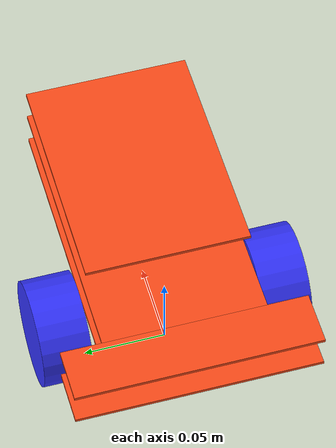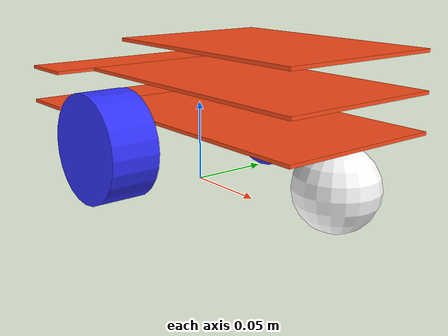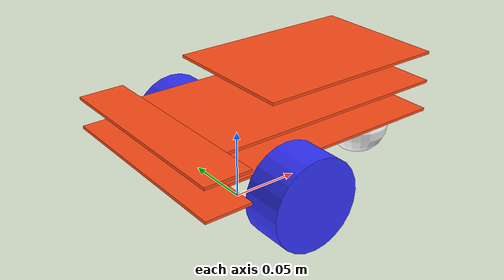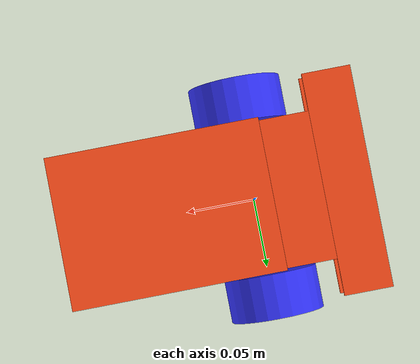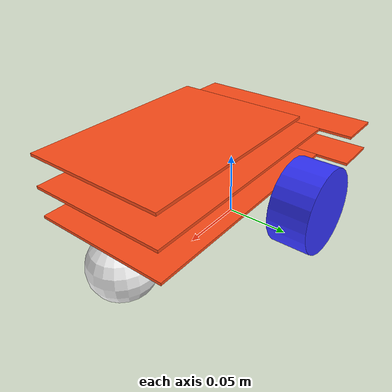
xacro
<?xml version="1.0"?>
<robot xmlns:xacro="http://www.ros.org/wiki/xacro" >

  <xacro:include filename="inertial_macros.xacro"/>

  <xacro:property name="base_link_base_footprint_offset_z" value="0.047"/> <!-- at the bottom face of the chassis-->

  <xacro:property name="chassis_length" value="0.210"/>
  <xacro:property name="chassis_thickness" value="0.002"/>
  <xacro:property name="chassis_height" value="0.0469"/> <!-- from the bottom face up to lidar plate face -->
  <xacro:property name="chassis_spacing" value="${0.02 + chassis_thickness}"/>

  <xacro:property name="chassis_body_length" value="0.176"/>
  <xacro:property name="chassis_body_width" value="0.1"/>

  <xacro:property name="chassis_tail_length" value="0.0330"/>
  <xacro:property name="chassis_tail_width" value="0.15"/>
  <xacro:property name="chassis_tail_offset_x" value="${chassis_tail_length}"/>
  <xacro:property name="chassis_tail_base_link_offset_x" value="0.07744"/> <!-- distance from curved tail to axis of rotation -->

  <xacro:property name="chassis_top_length" value="0.140"/>

  <xacro:property name="wheel_radius" value="0.0325"/>
  <xacro:property name="wheel_thickness" value="0.03"/>
  <xacro:property name="wheel_base_link_offset_y" value="0.0675"/>

  <xacro:property name="wheel_mass" value="0.036"/>

  <xacro:property name="caster_wheel_mass" value="0.036"/>
  <xacro:property name="caster_wheel_base_link_vis_offset_x" value="0.1595"/>
  <xacro:property name="caster_wheel_offset_z" value="${base_link_base_footprint_offset_z / 2}"/>
  <xacro:property name="caster_wheel_radius" value="${caster_wheel_offset_z}"/>

  <material name="white">
    <color rgba="1 1 1 1" />
  </material>

  <material name="orange">
    <color rgba="1 0.3 0.1 1"/>
  </material>

  <material name="blue">
    <color rgba="0.2 0.2 1 1"/>
  </material>

  <material name="black">
    <color rgba="0 0 0 1"/>
  </material>

  <material name="red">
    <color rgba="1 0 0 1"/>
  </material>

  <!-- >>> ROBOT LOCAL ORIGIN STUFF -->
  <!-- base_link but grounded -->
  <link name="base_footprint"> </link>

  <joint name="base_link_joint" type="fixed">
    <parent link="base_footprint"/>
    <child link="base_link"/>
    <origin xyz="0 0 ${base_link_base_footprint_offset_z}" rpy="0 0 0"/>
  </joint>

  <!-- base_link is on the bottom face of chassis, in between the two wheels -->
  <link name="base_link"> </link>
  <!-- <<< ROBOT LOCAL ORIGIN STUFF -->

  <!-- >>> CHASSIS -->
  <joint name="chassis_link_joint" type="fixed">
    <parent link="base_link"/>
    <child link="chassis_link"/>
    <origin xyz="${(chassis_length / 2) - chassis_tail_base_link_offset_x} 0 ${chassis_height / 2}" rpy="0 0 0"/>
  </joint>

  <link name="chassis_link">
    <collision>
      <origin xyz="0 0 0" rpy="0 0 0"/>
      <geometry>
        <box size="${chassis_length} ${chassis_body_width} ${chassis_height}"/>
      </geometry>
    </collision>
    <xacro:inertial_box mass="0.5" x="${chassis_length}" y="${chassis_body_width}" z="${chassis_height}">
      <origin xyz="${chassis_length/2} 0 ${chassis_height/2}" rpy="0 0 0"/>
    </xacro:inertial_box>
  </link>

  <joint name="chassis_vis_link_joint" type="fixed">
    <parent link="chassis_link"/>
    <child link="chassis_vis_link"/>
    <origin xyz="${-chassis_body_length / 2 + chassis_tail_length / 2} 0 ${-chassis_height / 2}" rpy="0 0 0"/>
  </joint>

  <link name="chassis_vis_link">

    <!-- >>> BOTTOM SECTION -->
      <!-- >>> MAIN PART -->
      <visual>
        <origin xyz="${chassis_body_length / 2} 0 ${chassis_thickness / 2}" rpy="0 0 0"/>
        <geometry>
          <box size="${chassis_body_length} ${chassis_body_width} ${chassis_thickness}"/>
        </geometry>
        <material name="orange"/>
      </visual>
      <!-- <<< MAIN PART -->
      <!-- >>> TAIL PART -->
      <visual>
        <origin xyz="${-chassis_tail_length / 2} 0 ${chassis_thickness / 2}" rpy="0 0 0"/>
        <geometry>
          <box size="${chassis_tail_length} ${chassis_tail_width} ${chassis_thickness}"/>
        </geometry>
        <material name="orange"/>
      </visual>
      <!-- <<< TAIL PART -->
    <!-- <<< BOTTOM SECTION -->

    <!-- >>> MIDDLE SECTION -->
      <!-- >>> MAIN PART -->
      <visual>
        <origin xyz="${chassis_body_length / 2} 0 ${chassis_thickness / 2 + chassis_spacing}" rpy="0 0 0"/>
        <geometry>
          <box size="${chassis_body_length} ${chassis_body_width} ${chassis_thickness}"/>
        </geometry>
        <material name="orange"/>
      </visual>
      <!-- <<< MAIN PART -->
      <!-- >>> TAIL PART -->
      <visual>
        <origin xyz="${-chassis_tail_length / 2} 0 ${chassis_thickness / 2 + chassis_spacing}" rpy="0 0 0"/>
        <geometry>
          <box size="${chassis_tail_length} ${chassis_tail_width} ${chassis_thickness}"/>
        </geometry>
        <material name="orange"/>
      </visual>
      <!-- <<< TAIL PART -->
    <!-- <<< MIDDLE SECTION -->

    <!-- >>> TOP SECTION -->
      <!-- >>> MAIN PART -->
      <visual>
        <origin xyz="${chassis_length / 2} 0 ${chassis_thickness / 2 + 2 * chassis_spacing}" rpy="0 0 0"/>
        <geometry>
          <box size="${chassis_top_length} ${chassis_body_width} ${chassis_thickness}"/>
        </geometry>
        <material name="orange"/>
      </visual>
      <!-- <<< MAIN PART -->
    <!-- <<< TOP SECTION -->
  </link>
  <!-- <<< CHASSIS -->

  <!-- >>> WHEELS -->
  <joint name="left_wheel_joint" type="continuous">
    <parent link="base_footprint"/>
    <child link="left_wheel"/>
    <origin xyz="0 ${wheel_base_link_offset_y} ${wheel_radius}" rpy="-${pi/2} 0 0"/>
    <axis xyz="0 0 1"/>
  </joint>

  <link name="left_wheel">
    <visual>
      <geometry>
        <cylinder radius="${wheel_radius}" length="${wheel_thickness}"/>
      </geometry>
      <material name="blue"/>
    </visual>
    <collision>
      <geometry>
        <cylinder radius="${wheel_radius}" length="${wheel_thickness}"/>
      </geometry>
    </collision>
    <xacro:inertial_cylinder mass="${wheel_mass}" length="${wheel_thickness}" radius="${wheel_radius}">
      <origin xyz="0 0 0" rpy="0 0 0"/>
    </xacro:inertial_cylinder>
  </link>

  <joint name="right_wheel_joint" type="continuous">
    <parent link="base_footprint"/>
    <child link="right_wheel"/>
    <origin xyz="0 ${-wheel_base_link_offset_y} ${wheel_radius}" rpy="${pi/2} 0 0"/>
    <axis xyz="0 0 1"/>
  </joint>

  <link name="right_wheel">
    <visual>
      <geometry>
        <cylinder radius="${wheel_radius}" length="${wheel_thickness}"/>
      </geometry>
      <material name="blue"/>
    </visual>
    <collision>
      <geometry>
        <cylinder radius="${wheel_radius}" length="${wheel_thickness}"/>
      </geometry>
    </collision>
    <xacro:inertial_cylinder mass="${wheel_mass}" length="${wheel_thickness}" radius="${wheel_radius}">
      <origin xyz="0 0 0" rpy="0 0 0"/>
    </xacro:inertial_cylinder>
  </link>

  <joint name="caster_wheel_joint" type="fixed">
    <parent link="chassis_vis_link"/>
    <child link="caster_wheel"/>
    <origin xyz="${caster_wheel_base_link_vis_offset_x} 0 ${-caster_wheel_offset_z}"/>
  </joint>

  <link name="caster_wheel">
    <visual>
      <geometry>
        <sphere radius="${caster_wheel_radius}"/>
      </geometry>
      <material name="white"/>
    </visual>
    <collision>
      <geometry>
        <sphere radius="${caster_wheel_radius}"/>
      </geometry>
    </collision>
    <xacro:inertial_sphere mass="${caster_wheel_mass}" radius="${caster_wheel_radius}">
      <origin xyz="0 0 0" rpy="0 0 0"/>
    </xacro:inertial_sphere>
  </link>

  <!-- <<< WHEELS -->

  <!-- >>> GAZEBO STUFF -->
  <gazebo reference="chassis">
    <material>Gazebo/Orange</material>
  </gazebo>

  <gazebo reference="caster_wheel">
    <material>Gazebo/White</material>
    <mu1 value="0.001"/>
    <mu2 value="0.001"/>
  </gazebo>

  <gazebo reference="left_wheel">
    <material>Gazebo/Blue</material>
  </gazebo>

  <gazebo reference="right_wheel">
    <material>Gazebo/Blue</material>
  </gazebo>
  <!-- >>> GAZEBO STUFF -->

</robot>
